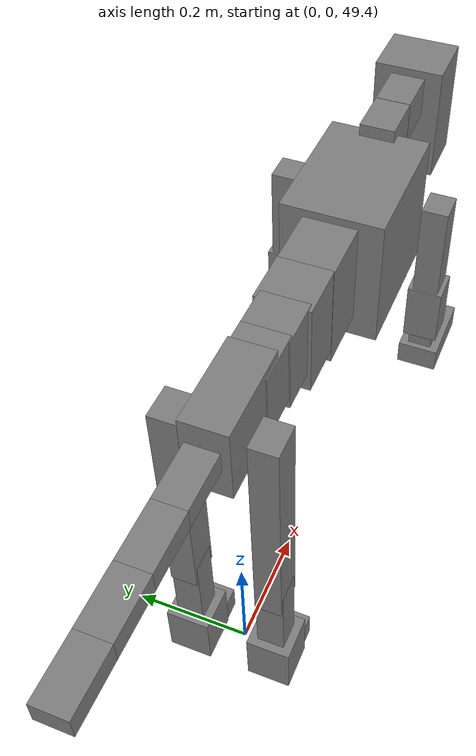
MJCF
<mujoco model="dog">

    <default>
        <joint armature="0.02" stiffness="1" damping="0.2" limited="true"/>
        <geom condim="3" friction="1 0.05 0.05" margin="0.01"/>
        <motor ctrllimited="true" ctrlrange="-1.0 1.0" forcelimited="true" gear="50"/>
    </default>

    <compiler inertiafromgeom="true" angle="radian"/>

    <option timestep="0.016" iterations="50" tolerance="1e-10" solver="Newton" jacobian="dense" cone="pyramidal"/>

    <size nconmax="20000" njmax="60000" nstack="5000000"/>
    <visual>
        <map force="0.1" zfar="30"/>
        <rgba haze="0.15 0.25 0.35 1"/>
        <quality shadowsize="2048"/>
        <global offwidth="800" offheight="800"/>
    </visual>

    <asset>
        <texture type="skybox" builtin="gradient" rgb1="0.3 0.5 0.7" rgb2="0 0 0" width="512" height="512"/>
        <texture name="texplane" type="2d" builtin="checker" rgb1=".2 .3 .4" rgb2=".1 0.15 0.2" width="512" height="512"
                 mark="cross" markrgb=".8 .8 .8"/>
        <texture name="texgeom" type="cube" builtin="flat" mark="cross" width="127" height="1278" rgb1="0.8 0.6 0.4"
                 rgb2="0.8 0.6 0.4" markrgb="1 1 1" random="0.01"/>

        <material name="matplane" reflectance="0.3" texture="texplane" texrepeat="1 1" texuniform="true"/>
        <material name="matgeom" texture="texgeom" texuniform="true" rgba="0.8 0.6 .4 1"/>
    </asset>

    <worldbody>
        <geom name="floor" pos="0 0 0" size="0 0 .25" type="plane" material="matplane" condim="3"/>

        <light directional="false" diffuse=".2 .2 .2" specular="0 0 0" pos="0 0 5" dir="0 0 -1" castshadow="false"/>
        <light mode="targetbodycom" target="torso" directional="false" diffuse=".8 .8 .8" specular="0.3 0.3 0.3"
               pos="0 0 4.0" dir="0 0 -1"/>

        <body name="root" pos="0 0 50">
            <freejoint name="root_1"/>
            <geom type="box" pos="0 0 -0.02" size="0.0774  0.0358  0.063" density="2030"/>

            <body name="spine1" pos="0.054 0 0">
                <joint name="spine1_y" axis="0 1 0" range="0 0.7" limited="true"/>
                <geom type="box" pos="0.02375 0 -0.03" size="0.04375  0.0375  0.05985" density="2030"/>

                <body name="spine2" pos="0.0612 0 0">
                    <joint name="spine2_y" axis="0 1 0" range="-0.15 0.15" limited="true"/>
                    <geom type="box" pos="0.03555  0  -0.04" size="0.04055  0.039  0.06615" density="2030"/>

                    <body name="spine3" pos="0.0730 0 0">
                        <joint name="spine3_y" axis="0 1 0" range="-0.15 0.15" limited="true"/>
                        <geom type="box" pos="0.03555  0  -0.057" size="0.04555  0.0445  0.081" density="2030"/>

                        <body name="spine4" pos="0.0780 0 0">
                            <joint name="spine4_y" axis="0 1 0" range="-0.15 0.15" limited="true"/>
                            <geom type="box" pos="0.05265  0  -0.07" size="0.05265  0.045  0.09135" density="2030"/>

                            <body name="torso" pos="0.1082 0 0">
                                <joint name="torso_y" axis="0 1 0" range="-0.15 0.15" limited="true"/>
                                <geom type="box" pos="0.11925  0  -0.085" size="0.11925  0.085  0.11745"
                                      density="2030"/>

                                <body name="neck1" pos="0.2160  0   0.0180">
                                    <joint name="neck1_y" axis="0 1 0" range="-1.2  -1" limited="true"/>
                                    <geom type="box" pos="0.0423  0  0" size="0.0423  0.03  0.036" density="2325"/>

                                    <body name="neck2" pos="0.0853  0  0">
                                        <joint name="neck2_y" axis="0 1 0" range="0.1  0" limited="true"/>
                                        <geom type="box" pos="0.0423  0  0" size="0.0423  0.03  0.036" density="2325"/>

                                        <body name="head" pos="0.0853  0  0">
                                            <joint name="head_y" axis="0 1 0" range="-0.3  -0.2" limited="true"/>
                                            <geom type="box" pos="0.0531  0  -0.055" size="0.0531  0.06  0.1044"
                                                  density="4030"/>

                                        </body>
                                    </body>
                                </body>

                                <body name="front_shoulder" pos="0.156  0   -0.0480">
                                    <joint name="front_shoulder_y" axis="0 1 0" range="-1 1.5" limited="true"/>
                                    <geom type="box" pos="0 0.13 -0.0712" size="0.0255  0.0218  0.0979" density="1158"/>
                                    <geom type="box" pos="0 -0.13 -0.0712" size="0.0255  0.0218  0.0979"
                                          density="1158"/>

                                    <body name="front_elbow" pos="0  0  -0.1425">
                                        <joint name="front_elbow_y" axis="0 1 0" range="-2 0" limited="true"/>
                                        <geom type="box" pos="0 0.13 -0.0534" size="0.0288  0.0294  0.0534"
                                              density="1081"/>
                                        <geom type="box" pos="0 -0.13 -0.0534" size="0.0288  0.0294  0.0534"
                                              density="1081"/>

                                        <body name="front_wrist" pos="0  0  -0.1069">
                                            <joint name="front_wrist_y" axis="0 1 0" range="-0.2 0" limited="true"/>
                                            <geom type="box" pos="0 0.13 -0.0220" size="0.0185  0.0206  0.0352"
                                                  density="1664"/>
                                            <geom type="box" pos="0 -0.13 -0.0220" size="0.0185  0.0206  0.0352"
                                                  density="1664"/>

                                            <body name="front_finger_end" pos="0  0  -0.0441">
                                                <joint name="front_finger_y" axis="0 1 0" range="-0.4 1"
                                                       limited="true"/>
                                                <geom type="box" pos="0.0347  0.13  -0.0068"
                                                      size="0.0635  0.0347  0.0218" density="1515"/>
                                                <geom type="box" pos="0.0347  -0.13  -0.0068"
                                                      size="0.0635  0.0347  0.0218" density="1515"/>

                                            </body>

                                        </body>
                                    </body>
                                </body>

                            </body>
                        </body>
                    </body>
                </body>
            </body>

            <body name="back_hip" pos="-0.03 0 -0.018">
                <joint name="back_hip_y" axis="0 1 0" range="-1.5 0.3" limited="true"/>
                <geom type="box" pos="0 0.07 -0.1700" size="0.0276  0.0217  0.1928" density="1154"/>
                <geom type="box" pos="0 -0.07 -0.1700" size="0.0276  0.0217  0.1928" density="1154"/>

                <body name="back_knee" pos="0  0  -0.3400">
                    <joint name="back_knee_y" axis="0 1 0" range="0 2.8" limited="true"/>
                    <geom type="box" pos="0 0.07 -0.0702" size="0.0226  0.0223  0.0858" density="1227"/>
                    <geom type="box" pos="0 -0.07 -0.0702" size="0.0226  0.0223  0.0858" density="1227"/>

                    <body name="back_ankle" pos="0  0  -0.1405">
                        <joint name="back_ankle_y" axis="0 1 0" range="-2.2 0" limited="true"/>
                        <geom type="box" pos="0 0.07 -0.0370" size="0.0359  0.0359  0.0483" density="1284"/>
                        <geom type="box" pos="0 -0.07 -0.0370" size="0.0359  0.0359  0.0483" density="1284"/>

                        <body name="back_toe_end" pos="0  0  -0.0741">
                            <joint name="back_toe_y" axis="0 1 0" range="-0.4 1" limited="true"/>
                            <geom type="box" pos="0.0282  0.07  -0.0086" size="0.0517  0.0282  0.0236" density="1515"/>
                            <geom type="box" pos="0.0282  -0.07  -0.0086" size="0.0517  0.0282  0.0236" density="1515"/>

                        </body>
                    </body>
                </body>
            </body>

            <body name="tail1" pos="-0.074 0 -0.006">
                <joint name="tail1_y" axis="0 1 0" range="-0.2 0.2" limited="true"/>
                <geom type="box" pos="-0.0536  0  0" size="0.045  0.025  0.0175" density="1587"/>

                <body name="tail2" pos="-0.09 0 0">
                    <joint name="tail2_y" axis="0 1 0" range="-0.2 0.2" limited="true"/>
                    <geom type="box" pos="-0.0536  0  0" size="0.045  0.025  0.0175" density="1587"/>

                    <body name="tail3" pos="-0.09 0 0">
                        <joint name="tail3_y" axis="0 1 0" range="-0.2 0.2" limited="true"/>
                        <geom type="box" pos="-0.0536  0  0" size="0.045  0.025  0.0175" density="1587"/>

                        <body name="tail4" pos="-0.09 0 0">
                            <joint name="tail4_y" axis="0 1 0" range="-0.2 0.2" limited="true"/>
                            <geom type="box" pos="-0.0536  0  0" size="0.045  0.025  0.0175" density="1587"/>

                        </body>
                    </body>
                </body>
            </body>
        </body>
    </worldbody>

    <actuator>
        <motor joint="spine1_y" forcerange="-150 150     "/>
        <motor joint="spine2_y" forcerange="-150 150     "/>
        <motor joint="spine3_y" forcerange="-150 150     "/>
        <motor joint="spine4_y" forcerange="-150 150     "/>
        <motor joint="torso_y" forcerange="-150 150     "/>
        <motor joint="neck1_y" forcerange="-100 100       "/>
        <motor joint="neck2_y" forcerange="-100 100       "/>
        <motor joint="head_y" forcerange="-150 150       "/>
        <motor joint="front_shoulder_y" forcerange="-115.84 129.68"/>
        <motor joint="front_elbow_y" forcerange="-183.82 130.09"/>
        <motor joint="front_wrist_y" forcerange="-87.64 77.05"/>
        <motor joint="front_finger_y" forcerange="-64.05 80.79"/>
        <motor joint="back_hip_y" forcerange="-201.29 287.52"/>
        <motor joint="back_knee_y" forcerange="-257.73 266.50"/>
        <motor joint="back_angle_y" forcerange="-241.52 233.18"/>
        <motor joint="back_toe_y" forcerange="-68.50 77.15"/>
        <motor joint="tail1_y" forcerange="-50 50     "/>
        <motor joint="tail2_y" forcerange="-50 50     "/>
        <motor joint="tail3_y" forcerange="-50 50     "/>
        <motor joint="tail4_y" forcerange="-50 50     "/>
    </actuator>
</mujoco>
